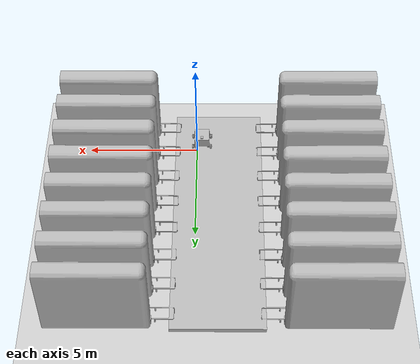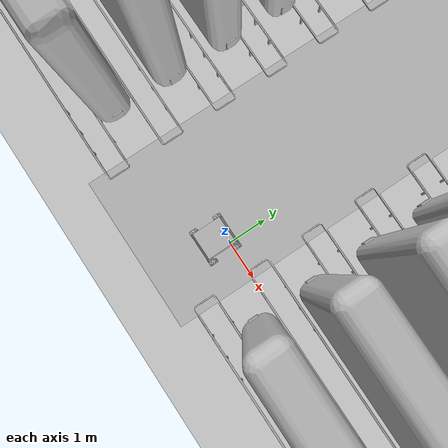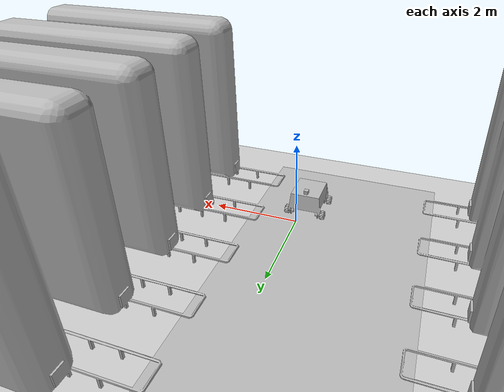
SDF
<?xml version="1.0" ?>
<sdf version="1.5">
	<world name="robot_control">
		<include>
			<uri>model://sun</uri>
		</include>
		<include>
			<uri>model://ground_plane</uri>
		</include>

		<include>
			<uri>model://robot_simulation</uri>
		</include>
		<include>
			<uri>model://robot_simulation/models/greenhouse_mini</uri>
			<pose>1 -2 0 0 0 -1.5708</pose>
		</include>
	</world>
</sdf>

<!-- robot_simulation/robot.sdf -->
<sdf version="1.5">
	<model name="robot">
		<include>
			<uri>model://robot_simulation/models/robot_body</uri>
		</include>

		<include>
			<uri>model://robot_simulation/models/mecanum_wheel</uri>
			<name>mecanum_wheel_1</name>
			<pose>0.2279 0.0795 0.4075 0 0 1.5708</pose>
		</include>

		<include>
			<uri>model://robot_simulation/models/mecanum_wheel</uri>
			<name>mecanum_wheel_2</name>
			<pose>0.2279 -0.5615 0.4075 0 0 1.5708</pose>
		</include>

		<include>
			<uri>model://robot_simulation/models/mecanum_wheel</uri>
			<name>mecanum_wheel_3</name>
			<pose>-0.6839 -0.5615 0.4075 0 0 -1.5708</pose>
		</include>

		<include>
			<uri>model://robot_simulation/models/mecanum_wheel</uri>
			<name>mecanum_wheel_4</name>
			<pose>-0.6839 0.0795 0.4075 0 0 -1.5708</pose>
		</include>

		<include>
			<uri>model://robot_simulation/models/rail_wheel</uri>
			<name>rail_wheel_1</name>
			<pose>-0.01 0.08 0.3835 0 0 0</pose>
		</include>

		<include>
			<uri>model://robot_simulation/models/rail_wheel</uri>
			<name>rail_wheel_2</name>
			<pose>-0.01 -0.561 0.3835 0 0 0</pose>
		</include>

		<include>
			<uri>model://robot_simulation/models/rail_wheel</uri>
			<name>rail_wheel_3</name>
			<pose>-0.447 -0.561 0.3835 0 0 3.1415</pose>
		</include>

		<include>
			<uri>model://robot_simulation/models/rail_wheel</uri>
			<name>rail_wheel_4</name>
			<pose>-0.447 0.08 0.3835 0 0 3.1415</pose>
		</include>

		<include>
			<uri>model://robot_simulation/models/camera</uri>
			<pose>-0.23 0 0.87 0 0 1.5708</pose>
		</include>

		<joint type="revolute" name="body-wheel_1">

			<pose>0 0 -0.024 0 0 0</pose>

			<parent> body::base </parent>
			<child> mecanum_wheel_1::base</child>

			<axis>
				<xyz>0 1 0</xyz>

				<limit>
					<lower>-1.79769e+308</lower>
					<upper>1.79769e+308</upper>
				</limit>
			</axis>
		</joint>

		<joint type="revolute" name="body-wheel_2">

			<pose>0 0 -0.024 0 0 0</pose>

			<parent> body::base </parent>
			<child> mecanum_wheel_2::base </child>

			<axis>
				<xyz>0 1 0</xyz>

				<limit>
					<lower>-1.79769e+308</lower>
					<upper>1.79769e+308</upper>
				</limit>
			</axis>
		</joint>

		<joint type="revolute" name="body-wheel_3">

			<pose>0 0 -0.024 0 0 3.1415</pose>

			<parent> body::base </parent>
			<child> mecanum_wheel_3::base </child>

			<axis>
				<xyz>0 1 0</xyz>

				<limit>
					<lower>-1.79769e+308</lower>
					<upper>1.79769e+308</upper>
				</limit>
			</axis>
		</joint>

		<joint type="revolute" name="body-wheel_4">

			<pose>0 0 -0.024 0 0 3.1415</pose>

			<parent> body::base </parent>
			<child> mecanum_wheel_4::base </child>

			<axis>
				<xyz>0 1 0</xyz>

				<limit>
					<lower>-1.79769e+308</lower>
					<upper>1.79769e+308</upper>
				</limit>
			</axis>
		</joint>

		<joint type="revolute" name="body-wheel_5">

			<pose>0 0 0 0 0 0</pose>

			<parent> body::base </parent>
			<child> rail_wheel_1::base </child>

			<axis>
				<xyz>-1 0 0</xyz>

				<limit>
					<lower>-1.79769e+308</lower>
					<upper>1.79769e+308</upper>
				</limit>
			</axis>
		</joint>

		<joint type="revolute" name="body-wheel_6">

			<pose>0 0 0 0 0 0</pose>

			<parent> body::base </parent>
			<child> rail_wheel_2::base </child>

			<axis>
				<xyz>-1 0 0</xyz>

				<limit>
					<lower>-1.79769e+308</lower>
					<upper>1.79769e+308</upper>
				</limit>
			</axis>
		</joint>

		<joint type="revolute" name="body-wheel_7">

			<pose>0 0 0 0 0 0</pose>

			<parent> body::base </parent>
			<child> rail_wheel_3::base </child>

			<axis>
				<xyz>-1 0 0</xyz>

				<limit>
					<lower>-1.79769e+308</lower>
					<upper>1.79769e+308</upper>
				</limit>
			</axis>
		</joint>

		<joint type="revolute" name="body-wheel_8">

			<pose>0 0 0 0 0 0</pose>

			<parent> body::base </parent>
			<child> rail_wheel_4::base </child>

			<axis>
				<xyz>-1 0 0</xyz>

				<limit>
					<lower>-1.79769e+308</lower>
					<upper>1.79769e+308</upper>
				</limit>
			</axis>
		</joint>

		<joint type="fixed" name="body-camera">
			<pose> 0 0 0 0 0 0 </pose>

			<parent> body::base </parent>
			<child> camera::base </child>
		</joint>

		<plugin name="robot_control_plugin" filename="./librobot_control_plugin.so"/>
	</model>
</sdf>

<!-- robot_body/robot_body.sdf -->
<sdf version="1.5">
  <model name="body">
    <!-- Give the base link a unique name -->
    <pose>0 0 0 0 0 0</pose>
    <link name="base">
      <inertial>
        <mass>60.0</mass>
          <inertia>
              <ixx>18.889</ixx>
              <iyy>15.40</iyy>
              <izz>24.8</izz>
              <ixy>12.28</ixy>
              <ixz>7.11</ixz>
              <iyz>8.19</iyz>
          </inertia>
      </inertial>

      <visual name="base_visual">
        <geometry>
          <mesh>
            <uri>model://robot_simulation/models/robot_body/meshes/robot_body.obj</uri>
          </mesh>
        </geometry>
      </visual>

      <collision name="base_collision">
        <geometry>
          <mesh>
            <uri>model://robot_simulation/models/robot_body/meshes/robot_body.obj</uri>
          </mesh>
        </geometry>
      </collision>
    </link>

  </model>
</sdf>

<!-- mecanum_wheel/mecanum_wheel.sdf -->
<sdf version="1.5">
  <model name="mecanum_wheel">
    <!-- Give the base link a unique name -->
    <pose>0 0 0 0 0 0</pose>
    <link name="base">
      <inertial>
        <mass>0.6</mass>
          <inertia>
            <ixx>0.02</ixx>
            <iyy>0.02</iyy>
            <izz>0.02</izz>
            <ixy>0.01</ixy>
            <ixz>0.01</ixz>
            <iyz>0.01</iyz>
          </inertia>
      </inertial>

      <collision name="base_collision">
        <geometry>
          <mesh>
            <uri>model://robot_simulation/models/mecanum_wheel/meshes/mecanum_wheel.obj</uri>
          </mesh>
        </geometry>
      </collision>

      <visual name="base_visual">
        <geometry>
          <mesh>
            <uri>model://robot_simulation/models/mecanum_wheel/meshes/mecanum_wheel.obj</uri>
          </mesh>
        </geometry>
      </visual>
    </link>
  </model>
</sdf>

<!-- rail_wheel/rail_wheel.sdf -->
<sdf version="1.5">
  <model name="rail_wheel">
    <!-- Give the base link a unique name -->
    <pose>0 0 0 0 0 0</pose>
    <link name="base">
      <inertial>
        <mass>0.8</mass>
          <inertia>
            <ixx>0.003</ixx>
            <iyy>0.003</iyy>
            <izz>0.003</izz>
            <ixy>0.002</ixy>
            <ixz>0.002</ixz>
            <iyz>0.002</iyz>
          </inertia>
      </inertial>

      <visual name="base_visual">
        <geometry>
          <mesh>
            <uri>model://robot_simulation/models/rail_wheel/meshes/rail_wheel.obj</uri>
          </mesh>
        </geometry>
      </visual>

      <collision name="base_collision">
        <geometry>
          <mesh>
            <uri>model://robot_simulation/models/rail_wheel/meshes/rail_wheel.obj</uri>
          </mesh>
        </geometry>
      </collision>
    </link>

  </model>
</sdf>

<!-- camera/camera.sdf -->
<sdf version="1.5">
	<model name="camera">
		<link name="base">
			<inertial>
	        	<mass>0.1</mass>
	          		<inertia>
			            <ixx>0.000166667</ixx>
			            <iyy>0.000166667</iyy>
			            <izz>0.000166667</izz>
			            <ixy>0</ixy>
			            <ixz>0</ixz>
			            <iyz>0</iyz>
	         		 </inertia>
	        </inertial>
	        <collision name='collision'>
		        <geometry>
		            <box>
		              	<size>0.1 0.1 0.1</size>
		            </box>
		        </geometry>
	        </collision>
	        <visual name='visual'>
		          <geometry>
			            <box>
			              	<size>0.1 0.1 0.1</size>
			            </box>
		          </geometry>
	        </visual>

		    <sensor name="color" type="camera">
		        <pose frame="">0 -0.046 0.004 0 0 0</pose>
		        <camera>
		          	<horizontal_fov>1.047</horizontal_fov>
			        <image>
			            <width>640</width>
			            <height>480</height>
			            <format>RGB_INT8</format>
			        </image>
			        <clip>
			            <near>0.1</near>
			            <far>100</far>
			        </clip>
			        <noise>
			            <type>gaussian</type>
			            <mean>0.0</mean>
			            <stddev>0.007</stddev>
			        </noise>
		        </camera>
		        <always_on>1</always_on>
		        <update_rate>60</update_rate>
		        <visualize>1</visualize>
	      	</sensor>

	        <sensor name='camera' type='depth'>
	        	<pose frame="">0 -0.03 0.004 0 0 0</pose>
		        <camera>
		            <horizontal_fov>1.047</horizontal_fov>
		            <image>
			            <width>640</width>
			            <height>480</height>
		            </image>
		            <clip>
		              	<near>0.1</near>
		              	<far>100</far>
		            </clip>
		        </camera>
		        <plugin name="camera_controller" filename="libgazebo_ros_depth_camera.so">
		            <robotNamespace>robot</robotNamespace>
		            <alwaysOn>true</alwaysOn>
		            <updateRate>0.0</updateRate>
		            <cameraName>depth_color_camera</cameraName>
		            <imageTopicName>camera/image_raw</imageTopicName>
		            <cameraInfoTopicName>camera/camera_info</cameraInfoTopicName>
		            <pointCloudTopicName>camera/points</pointCloudTopicName>
		            <frameName>camera</frameName>
		            <hackBaseline>0.07</hackBaseline>
		            <distortionK1>0.0</distortionK1>
		            <distortionK2>0.0</distortionK2>
		            <distortionK3>0.0</distortionK3>
		            <distortionT1>0.0</distortionT1>
		            <distortionT2>0.0</distortionT2>
		         </plugin>
		        <always_on>1</always_on>
		        <update_rate>60</update_rate>
		        <visualize>1</visualize>
	        </sensor>
		</link>
	</model>
</sdf>

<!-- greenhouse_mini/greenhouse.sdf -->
<sdf version="1.5">
  <model name="greenhouse_mini">
    <!-- Give the base link a unique name -->
    <pose>0 0 0 0 0 0</pose>
    <static>true</static>
    <link name="base">

      <visual name="base_visual">
        <geometry>
          <mesh>
            <uri>model://robot_simulation/models/greenhouse_mini/meshes/greenhouse_mini.obj</uri>
          </mesh>
        </geometry>
      </visual>

      <collision name="base_collision">
        <geometry>
          <mesh>
            <uri>model://robot_simulation/models/greenhouse_mini/meshes/greenhouse_mini.obj</uri>
          </mesh>
        </geometry>
      </collision>
    </link>

  </model>
</sdf>
